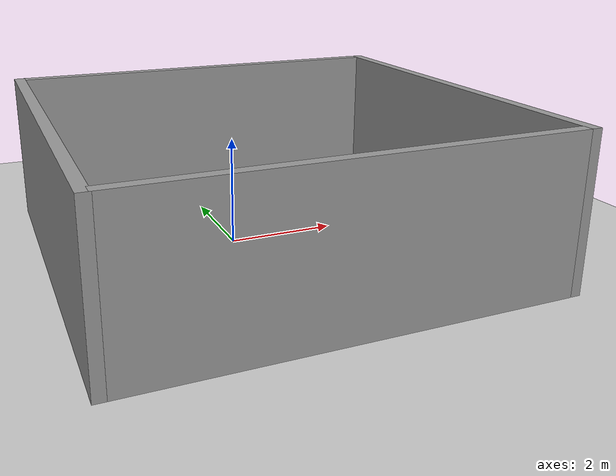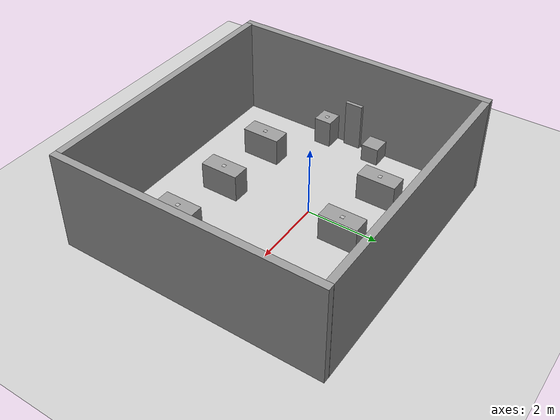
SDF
<sdf version="1.7">
 <world name="default">
  <light name="sun" type="directional">
   <pose>0 0 10 0 -0 0</pose>
   <diffuse>0.8 0.8 0.8 1</diffuse>
   <specular>0.2 0.2 0.2 1</specular>
   <attenuation>
    <range>1000</range>
    <constant>0.9</constant>
    <linear>0.01</linear>
    <quadratic>0.001</quadratic>
   </attenuation>
   <direction>-0.5 0.1 -0.9</direction>
   <spot><inner_angle>0</inner_angle><outer_angle>0</outer_angle><falloff>0</falloff></spot>
  </light>
  <model name="ground_plane">
   <static>1</static>
   <link name="link">
    <collision name="collision">
     <geometry><plane><normal>0 0 1</normal><size>100 100</size></plane></geometry>
     <surface><friction><ode><mu>100</mu><mu2>50</mu2></ode></friction></surface>
    </collision>
    <visual name="visual">
     <cast_shadows>0</cast_shadows>
     <geometry><plane><normal>0 0 1</normal><size>100 100</size></plane></geometry>
     <material>
      <script><uri>file://media/materials/scripts/gazebo.material</uri><name>Gazebo/Grey</name></script>
     </material>
    </visual>
   </link>
  </model>
  <gravity>0 0 -9.8</gravity>
  <magnetic_field>6e-06 2.3e-05 -4.2e-05</magnetic_field>
  <atmosphere type="adiabatic"/>
  <physics type="ode">
   <max_step_size>0.001</max_step_size>
   <real_time_factor>1</real_time_factor>
   <real_time_update_rate>1000</real_time_update_rate>
  </physics>
  <scene><ambient>0.4 0.4 0.4 1</ambient><background>0.7 0.7 0.7 1</background><shadows>1</shadows></scene>
  <spherical_coordinates>
   <surface_model>EARTH_WGS84</surface_model>
   <latitude_deg>0</latitude_deg>
   <longitude_deg>0</longitude_deg>
   <elevation>0</elevation>
   <heading_deg>0</heading_deg>
  </spherical_coordinates>
  <model name="grey_wall">
   <static>1</static>
   <link name="link">
    <pose>0 0 1.4 0 -0 0</pose>
    <collision name="collision"><geometry><box><size>7.5 0.2 2.8</size></box></geometry></collision>
    <visual name="visual">
     <cast_shadows>0</cast_shadows>
     <geometry><box><size>7.5 0.2 2.8</size></box></geometry>
     <material>
      <script>
       <uri>model://grey_wall/materials/scripts</uri>
       <uri>model://grey_wall/materials/textures</uri>
       <name>vrc/grey_wall</name>
      </script>
     </material>
    </visual>
   </link>
   <pose>0.471159 3.10617 0 0 -0 0</pose>
  </model>
  <model name="grey_wall_0">
   <static>1</static>
   <link name="link">
    <pose>0 0 1.4 0 -0 0</pose>
    <collision name="collision"><geometry><box><size>7.5 0.2 2.8</size></box></geometry></collision>
    <visual name="visual">
     <cast_shadows>0</cast_shadows>
     <geometry><box><size>7.5 0.2 2.8</size></box></geometry>
     <material>
      <script>
       <uri>model://grey_wall/materials/scripts</uri>
       <uri>model://grey_wall/materials/textures</uri>
       <name>vrc/grey_wall</name>
      </script>
     </material>
    </visual>
   </link>
   <pose>0.458614 -4.2 0 0 -0 0</pose>
  </model>
  <model name="grey_wall_1">
   <static>1</static>
   <link name="link">
    <pose>0 0 1.4 0 -0 0</pose>
    <collision name="collision"><geometry><box><size>7.5 0.2 2.8</size></box></geometry></collision>
    <visual name="visual">
     <cast_shadows>0</cast_shadows>
     <geometry><box><size>7.5 0.2 2.8</size></box></geometry>
     <material>
      <script>
       <uri>model://grey_wall/materials/scripts</uri>
       <uri>model://grey_wall/materials/textures</uri>
       <name>vrc/grey_wall</name>
      </script>
     </material>
    </visual>
   </link>
   <pose>-3.35 -0.55 0 0 -0 1.57</pose>
  </model>
  <model name="grey_wall_2">
   <static>1</static>
   <link name="link">
    <pose>0 0 1.4 0 -0 0</pose>
    <collision name="collision"><geometry><box><size>7.5 0.2 2.8</size></box></geometry></collision>
    <visual name="visual">
     <cast_shadows>0</cast_shadows>
     <geometry><box><size>7.5 0.2 2.8</size></box></geometry>
     <material>
      <script>
       <uri>model://grey_wall/materials/scripts</uri>
       <uri>model://grey_wall/materials/textures</uri>
       <name>vrc/grey_wall</name>
      </script>
     </material>
    </visual>
   </link>
   <pose>4.3 -0.547349 0 0 -0 1.57</pose>
  </model>
  <model name="TableMKII_0">
   <link name="link">
    <inertial>
     <mass>1</mass>
     <inertia>
      <ixx>0.166667</ixx>
      <ixy>0</ixy>
      <ixz>0</ixz>
      <iyy>0.166667</iyy>
      <iyz>0</iyz>
      <izz>0.166667</izz>
     </inertia>
    </inertial>
    <visual name="visual">
     <geometry><box><size>0.5 1.1 0.8</size></box></geometry>
     <material>
      <script><name>Gazebo/Grey</name><uri>file://media/materials/scripts/gazebo.material</uri></script>
      <shader type="pixel"><normal_map>__default__</normal_map></shader>
      <ambient>0.3 0.3 0.3 1</ambient>
      <diffuse>0.7 0.7 0.7 1</diffuse>
      <specular>0.01 0.01 0.01 1</specular>
      <emissive>0 0 0 1</emissive>
     </material>
     <pose>0 0 -0.1 0 -0 0</pose>
    </visual>
    <collision name="collision">
     <pose>0 0 -0.1 0 -0 0</pose>
     <geometry><box><size>0.5 1.1 0.8</size></box></geometry>
     <surface>
      <friction>
       <ode><mu>1</mu><mu2>1</mu2><fdir1>0 0 0</fdir1><slip1>0</slip1><slip2>0</slip2></ode>
       <torsional>
        <coefficient>1</coefficient>
        <patch_radius>0</patch_radius>
        <surface_radius>0</surface_radius>
        <use_patch_radius>1</use_patch_radius>
        <ode><slip>0</slip></ode>
       </torsional>
      </friction>
      <bounce><restitution_coefficient>0</restitution_coefficient><threshold>1e+06</threshold></bounce>
      <contact>
       <collide_without_contact>0</collide_without_contact>
       <collide_without_contact_bitmask>1</collide_without_contact_bitmask>
       <collide_bitmask>1</collide_bitmask>
       <ode>
        <soft_cfm>0</soft_cfm>
        <soft_erp>0.2</soft_erp>
        <kp>1e+13</kp>
        <kd>1</kd>
        <max_vel>0.01</max_vel>
        <min_depth>0</min_depth>
       </ode>
       <bullet>
        <split_impulse>1</split_impulse>
        <split_impulse_penetration_threshold>-0.01</split_impulse_penetration_threshold>
        <soft_cfm>0</soft_cfm>
        <soft_erp>0.2</soft_erp>
        <kp>1e+13</kp>
        <kd>1</kd>
       </bullet>
      </contact>
     </surface>
    </collision>
   </link>
   <static>1</static>
   <pose>2.3875 -2.37 0.5 0 -0 0</pose>
  </model>
  <model name="Apriltag36_11_00001">
   <link name="main">
    <visual name="main_Visual">
     <geometry><box><size>0.1 0.1 0.01</size></box></geometry>
     <material>
      <script>
       <uri>model://Apriltag36_11_00001/materials/scripts</uri>
       <uri>model://Apriltag36_11_00001/materials/textures</uri>
       <name>Apriltag36_11_00001</name>
      </script>
     </material>
    </visual>
   </link>
   <static>1</static>
   <pose>2.3875 -2.37 0.796 0 -0 0</pose>
  </model>
  <model name="dock">
   <link name="link">
    <inertial>
     <mass>1</mass>
     <inertia>
      <ixx>0.166667</ixx>
      <ixy>0</ixy>
      <ixz>0</ixz>
      <iyy>0.166667</iyy>
      <iyz>0</iyz>
      <izz>0.166667</izz>
     </inertia>
    </inertial>
    <visual name="visual">
     <geometry><box><size>0.1 0.5 1.4</size></box></geometry>
     <material>
      <script><name>Gazebo/Grey</name><uri>file://media/materials/scripts/gazebo.material</uri></script>
      <shader type="pixel"><normal_map>__default__</normal_map></shader>
      <ambient>0.3 0.3 0.3 1</ambient>
      <diffuse>0.7 0.7 0.7 1</diffuse>
      <specular>0.01 0.01 0.01 1</specular>
      <emissive>0 0 0 1</emissive>
     </material>
     <pose>0 0 0.2 0 -0 0</pose>
    </visual>
    <collision name="collision">
     <pose>0 0 0.2 0 -0 0</pose>
     <geometry><box><size>0.1 0.5 1.4</size></box></geometry>
     <surface>
      <friction>
       <ode><mu>1</mu><mu2>1</mu2><fdir1>0 0 0</fdir1><slip1>0</slip1><slip2>0</slip2></ode>
       <torsional>
        <coefficient>1</coefficient>
        <patch_radius>0</patch_radius>
        <surface_radius>0</surface_radius>
        <use_patch_radius>1</use_patch_radius>
        <ode><slip>0</slip></ode>
       </torsional>
      </friction>
      <bounce><restitution_coefficient>0</restitution_coefficient><threshold>1e+06</threshold></bounce>
      <contact>
       <collide_without_contact>0</collide_without_contact>
       <collide_without_contact_bitmask>1</collide_without_contact_bitmask>
       <collide_bitmask>1</collide_bitmask>
       <ode>
        <soft_cfm>0</soft_cfm>
        <soft_erp>0.2</soft_erp>
        <kp>1e+13</kp>
        <kd>1</kd>
        <max_vel>0.01</max_vel>
        <min_depth>0</min_depth>
       </ode>
       <bullet>
        <split_impulse>1</split_impulse>
        <split_impulse_penetration_threshold>-0.01</split_impulse_penetration_threshold>
        <soft_cfm>0</soft_cfm>
        <soft_erp>0.2</soft_erp>
        <kp>1e+13</kp>
        <kd>1</kd>
       </bullet>
      </contact>
     </surface>
    </collision>
   </link>
   <static>1</static>
   <pose>-3.2 -0.547 0.5 0 -0 0</pose>
  </model>
  <model name="Apriltag36_11_00003">
   <link name="main">
    <visual name="main_Visual">
     <geometry><box><size>0.1 0.1 0.01</size></box></geometry>
     <material>
      <script>
       <uri>model://Apriltag36_11_00003/materials/scripts</uri>
       <uri>model://Apriltag36_11_00003/materials/textures</uri>
       <name>Apriltag36_11_00003</name>
      </script>
     </material>
    </visual>
   </link>
   <static>1</static>
   <pose>-3 -1.3 0.796 0 -0 0</pose>
  </model>
  <model name="TableMKII">
   <link name="link">
    <inertial>
     <mass>1</mass>
     <inertia>
      <ixx>0.166667</ixx>
      <ixy>0</ixy>
      <ixz>0</ixz>
      <iyy>0.166667</iyy>
      <iyz>0</iyz>
      <izz>0.166667</izz>
     </inertia>
    </inertial>
    <visual name="visual">
     <geometry><box><size>0.5 1.1 0.8</size></box></geometry>
     <material>
      <script><name>Gazebo/Grey</name><uri>file://media/materials/scripts/gazebo.material</uri></script>
      <shader type="pixel"><normal_map>__default__</normal_map></shader>
      <ambient>0.3 0.3 0.3 1</ambient>
      <diffuse>0.7 0.7 0.7 1</diffuse>
      <specular>0.01 0.01 0.01 1</specular>
      <emissive>0 0 0 1</emissive>
     </material>
     <pose>0 0 -0.1 0 -0 0</pose>
    </visual>
    <collision name="collision">
     <pose>0 0 -0.1 0 -0 0</pose>
     <geometry><box><size>0.5 1.1 0.8</size></box></geometry>
     <surface>
      <friction>
       <ode><mu>1</mu><mu2>1</mu2><fdir1>0 0 0</fdir1><slip1>0</slip1><slip2>0</slip2></ode>
       <torsional>
        <coefficient>1</coefficient>
        <patch_radius>0</patch_radius>
        <surface_radius>0</surface_radius>
        <use_patch_radius>1</use_patch_radius>
        <ode><slip>0</slip></ode>
       </torsional>
      </friction>
      <bounce><restitution_coefficient>0</restitution_coefficient><threshold>1e+06</threshold></bounce>
      <contact>
       <collide_without_contact>0</collide_without_contact>
       <collide_without_contact_bitmask>1</collide_without_contact_bitmask>
       <collide_bitmask>1</collide_bitmask>
       <ode>
        <soft_cfm>0</soft_cfm>
        <soft_erp>0.2</soft_erp>
        <kp>1e+13</kp>
        <kd>1</kd>
        <max_vel>0.01</max_vel>
        <min_depth>0</min_depth>
       </ode>
       <bullet>
        <split_impulse>1</split_impulse>
        <split_impulse_penetration_threshold>-0.01</split_impulse_penetration_threshold>
        <soft_cfm>0</soft_cfm>
        <soft_erp>0.2</soft_erp>
        <kp>1e+13</kp>
        <kd>1</kd>
       </bullet>
      </contact>
     </surface>
    </collision>
   </link>
   <static>1</static>
   <pose>0.475 -2.37 0.5 0 -0 0</pose>
  </model>
  <model name="Apriltag36_11_00000">
   <link name="main">
    <visual name="main_Visual">
     <geometry><box><size>0.1 0.1 0.01</size></box></geometry>
     <material>
      <script>
       <uri>model://Apriltag36_11_00000/materials/scripts</uri>
       <uri>model://Apriltag36_11_00000/materials/textures</uri>
       <name>Apriltag36_11_00000</name>
      </script>
     </material>
    </visual>
   </link>
   <static>1</static>
   <pose>0.475 -2.37 0.796 0 -0 0</pose>
  </model>
  <model name="TableMKII_1">
   <link name="link">
    <inertial>
     <mass>1</mass>
     <inertia>
      <ixx>0.166667</ixx>
      <ixy>0</ixy>
      <ixz>0</ixz>
      <iyy>0.166667</iyy>
      <iyz>0</iyz>
      <izz>0.166667</izz>
     </inertia>
    </inertial>
    <visual name="visual">
     <geometry><box><size>0.5 1.1 0.8</size></box></geometry>
     <material>
      <script><name>Gazebo/Grey</name><uri>file://media/materials/scripts/gazebo.material</uri></script>
      <shader type="pixel"><normal_map>__default__</normal_map></shader>
      <ambient>0.3 0.3 0.3 1</ambient>
      <diffuse>0.7 0.7 0.7 1</diffuse>
      <specular>0.01 0.01 0.01 1</specular>
      <emissive>0 0 0 1</emissive>
     </material>
     <pose>0 0 -0.1 0 -0 0</pose>
    </visual>
    <collision name="collision">
     <pose>0 0 -0.1 0 -0 0</pose>
     <geometry><box><size>0.5 1.1 0.8</size></box></geometry>
     <surface>
      <friction>
       <ode><mu>1</mu><mu2>1</mu2><fdir1>0 0 0</fdir1><slip1>0</slip1><slip2>0</slip2></ode>
       <torsional>
        <coefficient>1</coefficient>
        <patch_radius>0</patch_radius>
        <surface_radius>0</surface_radius>
        <use_patch_radius>1</use_patch_radius>
        <ode><slip>0</slip></ode>
       </torsional>
      </friction>
      <bounce><restitution_coefficient>0</restitution_coefficient><threshold>1e+06</threshold></bounce>
      <contact>
       <collide_without_contact>0</collide_without_contact>
       <collide_without_contact_bitmask>1</collide_without_contact_bitmask>
       <collide_bitmask>1</collide_bitmask>
       <ode>
        <soft_cfm>0</soft_cfm>
        <soft_erp>0.2</soft_erp>
        <kp>1e+13</kp>
        <kd>1</kd>
        <max_vel>0.01</max_vel>
        <min_depth>0</min_depth>
       </ode>
       <bullet>
        <split_impulse>1</split_impulse>
        <split_impulse_penetration_threshold>-0.01</split_impulse_penetration_threshold>
        <soft_cfm>0</soft_cfm>
        <soft_erp>0.2</soft_erp>
        <kp>1e+13</kp>
        <kd>1</kd>
       </bullet>
      </contact>
     </surface>
    </collision>
   </link>
   <static>1</static>
   <pose>-1.4375 -2.37 0.5 0 -0 0</pose>
  </model>
  <model name="Apriltag36_11_00002">
   <link name="main">
    <visual name="main_Visual">
     <geometry><box><size>0.1 0.1 0.01</size></box></geometry>
     <material>
      <script>
       <uri>model://Apriltag36_11_00002/materials/scripts</uri>
       <uri>model://Apriltag36_11_00002/materials/textures</uri>
       <name>Apriltag36_11_00002</name>
      </script>
     </material>
    </visual>
   </link>
   <static>1</static>
   <pose>-1.4375 -2.37 0.796 0 -0 0</pose>
  </model>
  <model name="TableMKII_2">
   <link name="link">
    <inertial>
     <mass>1</mass>
     <inertia>
      <ixx>0.166667</ixx>
      <ixy>0</ixy>
      <ixz>0</ixz>
      <iyy>0.166667</iyy>
      <iyz>0</iyz>
      <izz>0.166667</izz>
     </inertia>
    </inertial>
    <visual name="visual">
     <geometry><box><size>0.5 1.1 0.8</size></box></geometry>
     <material>
      <script><name>Gazebo/Grey</name><uri>file://media/materials/scripts/gazebo.material</uri></script>
      <shader type="pixel"><normal_map>__default__</normal_map></shader>
      <ambient>0.3 0.3 0.3 1</ambient>
      <diffuse>0.7 0.7 0.7 1</diffuse>
      <specular>0.01 0.01 0.01 1</specular>
      <emissive>0 0 0 1</emissive>
     </material>
     <pose>0 0 -0.1 0 -0 0</pose>
    </visual>
    <collision name="collision">
     <pose>0 0 -0.1 0 -0 0</pose>
     <geometry><box><size>0.5 1.1 0.8</size></box></geometry>
     <surface>
      <friction>
       <ode><mu>1</mu><mu2>1</mu2><fdir1>0 0 0</fdir1><slip1>0</slip1><slip2>0</slip2></ode>
       <torsional>
        <coefficient>1</coefficient>
        <patch_radius>0</patch_radius>
        <surface_radius>0</surface_radius>
        <use_patch_radius>1</use_patch_radius>
        <ode><slip>0</slip></ode>
       </torsional>
      </friction>
      <bounce><restitution_coefficient>0</restitution_coefficient><threshold>1e+06</threshold></bounce>
      <contact>
       <collide_without_contact>0</collide_without_contact>
       <collide_without_contact_bitmask>1</collide_without_contact_bitmask>
       <collide_bitmask>1</collide_bitmask>
       <ode>
        <soft_cfm>0</soft_cfm>
        <soft_erp>0.2</soft_erp>
        <kp>1e+13</kp>
        <kd>1</kd>
        <max_vel>0.01</max_vel>
        <min_depth>0</min_depth>
       </ode>
       <bullet>
        <split_impulse>1</split_impulse>
        <split_impulse_penetration_threshold>-0.01</split_impulse_penetration_threshold>
        <soft_cfm>0</soft_cfm>
        <soft_erp>0.2</soft_erp>
        <kp>1e+13</kp>
        <kd>1</kd>
       </bullet>
      </contact>
     </surface>
    </collision>
   </link>
   <static>1</static>
   <pose>-1.4375 1.276 0.5 0 -0 0</pose>
  </model>
  <model name="Apriltag36_11_00004">
   <link name="main">
    <visual name="main_Visual">
     <geometry><box><size>0.1 0.1 0.01</size></box></geometry>
     <material>
      <script>
       <uri>model://Apriltag36_11_00004/materials/scripts</uri>
       <uri>model://Apriltag36_11_00004/materials/textures</uri>
       <name>Apriltag36_11_00004</name>
      </script>
     </material>
    </visual>
   </link>
   <static>1</static>
   <pose>-1.4375 1.276 0.796 0 -0 0</pose>
  </model>
  <model name="TableMKII_3">
   <link name="link">
    <inertial>
     <mass>1</mass>
     <inertia>
      <ixx>0.166667</ixx>
      <ixy>0</ixy>
      <ixz>0</ixz>
      <iyy>0.166667</iyy>
      <iyz>0</iyz>
      <izz>0.166667</izz>
     </inertia>
    </inertial>
    <visual name="visual">
     <geometry><box><size>0.5 1.1 0.8</size></box></geometry>
     <material>
      <script><name>Gazebo/Grey</name><uri>file://media/materials/scripts/gazebo.material</uri></script>
      <shader type="pixel"><normal_map>__default__</normal_map></shader>
      <ambient>0.3 0.3 0.3 1</ambient>
      <diffuse>0.7 0.7 0.7 1</diffuse>
      <specular>0.01 0.01 0.01 1</specular>
      <emissive>0 0 0 1</emissive>
     </material>
     <pose>0 0 -0.1 0 -0 0</pose>
    </visual>
    <collision name="collision">
     <pose>0 0 -0.1 0 -0 0</pose>
     <geometry><box><size>0.5 1.1 0.8</size></box></geometry>
     <surface>
      <friction>
       <ode><mu>1</mu><mu2>1</mu2><fdir1>0 0 0</fdir1><slip1>0</slip1><slip2>0</slip2></ode>
       <torsional>
        <coefficient>1</coefficient>
        <patch_radius>0</patch_radius>
        <surface_radius>0</surface_radius>
        <use_patch_radius>1</use_patch_radius>
        <ode><slip>0</slip></ode>
       </torsional>
      </friction>
      <bounce><restitution_coefficient>0</restitution_coefficient><threshold>1e+06</threshold></bounce>
      <contact>
       <collide_without_contact>0</collide_without_contact>
       <collide_without_contact_bitmask>1</collide_without_contact_bitmask>
       <collide_bitmask>1</collide_bitmask>
       <ode>
        <soft_cfm>0</soft_cfm>
        <soft_erp>0.2</soft_erp>
        <kp>1e+13</kp>
        <kd>1</kd>
        <max_vel>0.01</max_vel>
        <min_depth>0</min_depth>
       </ode>
       <bullet>
        <split_impulse>1</split_impulse>
        <split_impulse_penetration_threshold>-0.01</split_impulse_penetration_threshold>
        <soft_cfm>0</soft_cfm>
        <soft_erp>0.2</soft_erp>
        <kp>1e+13</kp>
        <kd>1</kd>
       </bullet>
      </contact>
     </surface>
    </collision>
   </link>
   <static>1</static>
   <pose>0.475 1.276 0.5 0 -0 0</pose>
  </model>
  <model name="Apriltag36_11_00005">
   <link name="main">
    <visual name="main_Visual">
     <geometry><box><size>0.1 0.1 0.01</size></box></geometry>
     <material>
      <script>
       <uri>model://Apriltag36_11_00005/materials/scripts</uri>
       <uri>model://Apriltag36_11_00005/materials/textures</uri>
       <name>Apriltag36_11_00005</name>
      </script>
     </material>
    </visual>
   </link>
   <static>1</static>
   <pose>0.475 1.276 0.796 0 -0 0</pose>
  </model>
  <model name="side_table">
   <link name="link">
    <inertial>
     <mass>1</mass>
     <inertia>
      <ixx>0.166667</ixx>
      <ixy>0</ixy>
      <ixz>0</ixz>
      <iyy>0.166667</iyy>
      <iyz>0</iyz>
      <izz>0.166667</izz>
     </inertia>
    </inertial>
    <visual name="visual">
     <geometry><box><size>0.5 0.5 0.8</size></box></geometry>
     <material>
      <script><name>Gazebo/Grey</name><uri>file://media/materials/scripts/gazebo.material</uri></script>
      <shader type="pixel"><normal_map>__default__</normal_map></shader>
      <ambient>0.3 0.3 0.3 1</ambient>
      <diffuse>0.7 0.7 0.7 1</diffuse>
      <specular>0.01 0.01 0.01 1</specular>
      <emissive>0 0 0 1</emissive>
     </material>
     <pose>0 0 -0.1 0 -0 0</pose>
    </visual>
    <collision name="collision">
     <pose>0 0 -0.1 0 -0 0</pose>
     <geometry><box><size>0.5 0.5 0.8</size></box></geometry>
     <surface>
      <friction>
       <ode><mu>1</mu><mu2>1</mu2><fdir1>0 0 0</fdir1><slip1>0</slip1><slip2>0</slip2></ode>
       <torsional>
        <coefficient>1</coefficient>
        <patch_radius>0</patch_radius>
        <surface_radius>0</surface_radius>
        <use_patch_radius>1</use_patch_radius>
        <ode><slip>0</slip></ode>
       </torsional>
      </friction>
      <bounce><restitution_coefficient>0</restitution_coefficient><threshold>1e+06</threshold></bounce>
      <contact>
       <collide_without_contact>0</collide_without_contact>
       <collide_without_contact_bitmask>1</collide_without_contact_bitmask>
       <collide_bitmask>1</collide_bitmask>
       <ode>
        <soft_cfm>0</soft_cfm>
        <soft_erp>0.2</soft_erp>
        <kp>1e+13</kp>
        <kd>1</kd>
        <max_vel>0.01</max_vel>
        <min_depth>0</min_depth>
       </ode>
       <bullet>
        <split_impulse>1</split_impulse>
        <split_impulse_penetration_threshold>-0.01</split_impulse_penetration_threshold>
        <soft_cfm>0</soft_cfm>
        <soft_erp>0.2</soft_erp>
        <kp>1e+13</kp>
        <kd>1</kd>
       </bullet>
      </contact>
     </surface>
    </collision>
   </link>
   <static>1</static>
   <pose>-3 -1.3 0.5 0 -0 0</pose>
  </model>
  <model name="side_table_0">
   <link name="link">
    <inertial>
     <mass>1</mass>
     <inertia>
      <ixx>0.166667</ixx>
      <ixy>0</ixy>
      <ixz>0</ixz>
      <iyy>0.166667</iyy>
      <iyz>0</iyz>
      <izz>0.166667</izz>
     </inertia>
    </inertial>
    <visual name="visual">
     <geometry><box><size>0.5 0.5 0.8</size></box></geometry>
     <material>
      <script><name>Gazebo/Grey</name><uri>file://media/materials/scripts/gazebo.material</uri></script>
      <shader type="pixel"><normal_map>__default__</normal_map></shader>
      <ambient>0.3 0.3 0.3 1</ambient>
      <diffuse>0.7 0.7 0.7 1</diffuse>
      <specular>0.01 0.01 0.01 1</specular>
      <emissive>0 0 0 1</emissive>
     </material>
     <pose>0 0 -0.1 0 -0 0</pose>
    </visual>
    <collision name="collision">
     <pose>0 0 -0.1 0 -0 0</pose>
     <geometry><box><size>0.5 0.5 0.8</size></box></geometry>
     <surface>
      <friction>
       <ode><mu>1</mu><mu2>1</mu2><fdir1>0 0 0</fdir1><slip1>0</slip1><slip2>0</slip2></ode>
       <torsional>
        <coefficient>1</coefficient>
        <patch_radius>0</patch_radius>
        <surface_radius>0</surface_radius>
        <use_patch_radius>1</use_patch_radius>
        <ode><slip>0</slip></ode>
       </torsional>
      </friction>
      <bounce><restitution_coefficient>0</restitution_coefficient><threshold>1e+06</threshold></bounce>
      <contact>
       <collide_without_contact>0</collide_without_contact>
       <collide_without_contact_bitmask>1</collide_without_contact_bitmask>
       <collide_bitmask>1</collide_bitmask>
       <ode>
        <soft_cfm>0</soft_cfm>
        <soft_erp>0.2</soft_erp>
        <kp>1e+13</kp>
        <kd>1</kd>
        <max_vel>0.01</max_vel>
        <min_depth>0</min_depth>
       </ode>
       <bullet>
        <split_impulse>1</split_impulse>
        <split_impulse_penetration_threshold>-0.01</split_impulse_penetration_threshold>
        <soft_cfm>0</soft_cfm>
        <soft_erp>0.2</soft_erp>
        <kp>1e+13</kp>
        <kd>1</kd>
       </bullet>
      </contact>
     </surface>
    </collision>
   </link>
   <static>1</static>
   <pose>-3 0.25 0.2 0 -0 0</pose>
  </model>
 </world>
</sdf>
